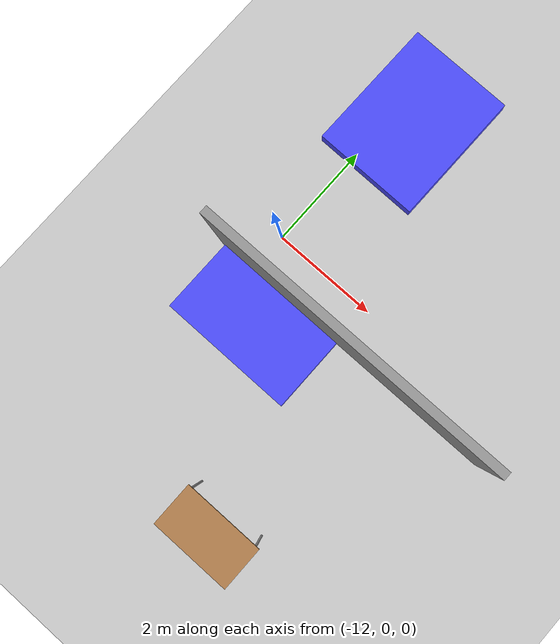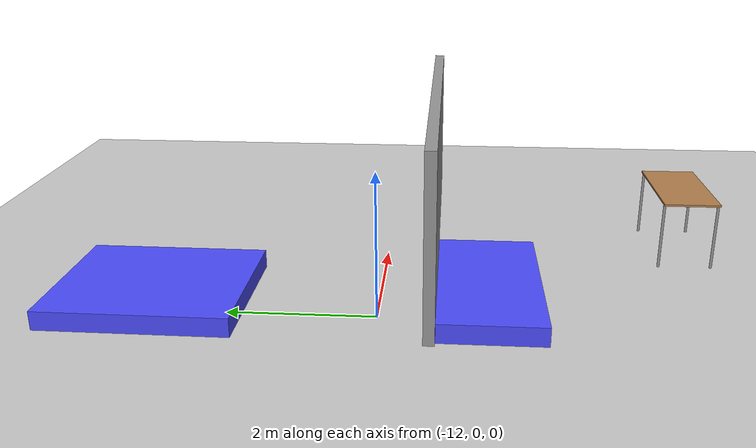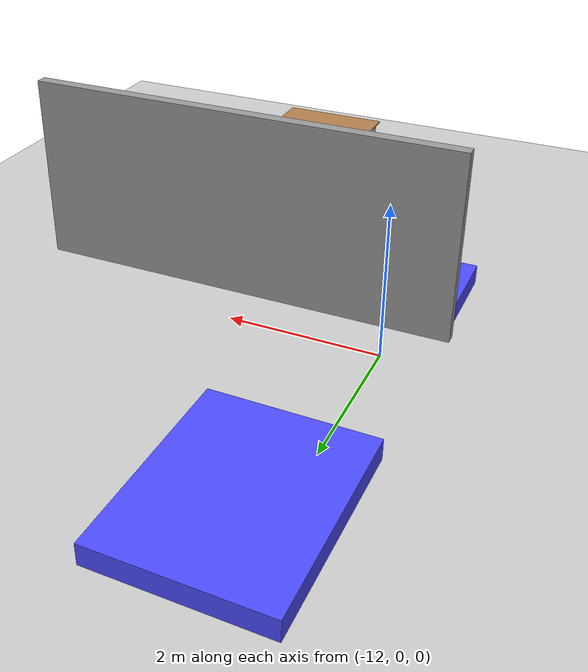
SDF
<sdf version="1.6">
 <world name="default">
  <model name="ground_plane">
   <static>1</static>
   <link name="link">
    <collision name="collision">
     <geometry><plane><normal>0 0 1</normal><size>100 100</size></plane></geometry>
     <surface><friction><ode><mu>100</mu><mu2>50</mu2></ode></friction></surface>
    </collision>
    <visual name="visual">
     <cast_shadows>0</cast_shadows>
     <geometry><plane><normal>0 0 1</normal><size>100 100</size></plane></geometry>
     <material>
      <script><uri>file://media/materials/scripts/gazebo.material</uri><name>Gazebo/Grey</name></script>
     </material>
    </visual>
   </link>
  </model>
  <model name="table_0">
   <static>1</static>
   <link name="link">
    <collision name="surface">
     <pose>0 0 1 0 -0 0</pose>
     <geometry><box><size>1.5 0.8 0.03</size></box></geometry>
     <surface><friction><ode><mu>0.6</mu><mu2>0.6</mu2></ode></friction></surface>
    </collision>
    <visual name="visual1">
     <pose>0 0 1 0 -0 0</pose>
     <geometry><box><size>1.5 0.8 0.03</size></box></geometry>
     <material>
      <script><uri>file://media/materials/scripts/gazebo.material</uri><name>Gazebo/Wood</name></script>
     </material>
    </visual>
    <collision name="front_left_leg">
     <pose>0.68 0.38 0.5 0 -0 0</pose>
     <geometry><cylinder><radius>0.02</radius><length>1</length></cylinder></geometry>
    </collision>
    <visual name="front_left_leg">
     <pose>0.68 0.38 0.5 0 -0 0</pose>
     <geometry><cylinder><radius>0.02</radius><length>1</length></cylinder></geometry>
     <material>
      <script><uri>file://media/materials/scripts/gazebo.material</uri><name>Gazebo/Grey</name></script>
     </material>
    </visual>
    <collision name="front_right_leg">
     <pose>0.68 -0.38 0.5 0 -0 0</pose>
     <geometry><cylinder><radius>0.02</radius><length>1</length></cylinder></geometry>
    </collision>
    <visual name="front_right_leg">
     <pose>0.68 -0.38 0.5 0 -0 0</pose>
     <geometry><cylinder><radius>0.02</radius><length>1</length></cylinder></geometry>
     <material>
      <script><uri>file://media/materials/scripts/gazebo.material</uri><name>Gazebo/Grey</name></script>
     </material>
    </visual>
    <collision name="back_right_leg">
     <pose>-0.68 -0.38 0.5 0 -0 0</pose>
     <geometry><cylinder><radius>0.02</radius><length>1</length></cylinder></geometry>
    </collision>
    <visual name="back_right_leg">
     <pose>-0.68 -0.38 0.5 0 -0 0</pose>
     <geometry><cylinder><radius>0.02</radius><length>1</length></cylinder></geometry>
     <material>
      <script><uri>file://media/materials/scripts/gazebo.material</uri><name>Gazebo/Grey</name></script>
     </material>
    </visual>
    <collision name="back_left_leg">
     <pose>-0.68 0.38 0.5 0 -0 0</pose>
     <geometry><cylinder><radius>0.02</radius><length>1</length></cylinder></geometry>
    </collision>
    <visual name="back_left_leg">
     <pose>-0.68 0.38 0.5 0 -0 0</pose>
     <geometry><cylinder><radius>0.02</radius><length>1</length></cylinder></geometry>
     <material>
      <script><uri>file://media/materials/scripts/gazebo.material</uri><name>Gazebo/Grey</name></script>
     </material>
    </visual>
   </link>
   <pose>-9.54504 -4.40497 0 0 -0 0</pose>
  </model>
  <model name="bed_1">
   <link name="link">
    <inertial>
     <mass>1</mass>
     <inertia>
      <ixx>0.166667</ixx>
      <ixy>0</ixy>
      <ixz>0</ixz>
      <iyy>0.166667</iyy>
      <iyz>0</iyz>
      <izz>0.166667</izz>
     </inertia>
    </inertial>
    <visual name="visual">
     <geometry><box><size>1.40955 2.56695 0.267057</size></box></geometry>
     <material>
      <script><name>Gazebo/Grey</name><uri>file://media/materials/scripts/gazebo.material</uri></script>
      <shader type="pixel"><normal_map>__default__</normal_map></shader>
      <ambient>0.3 0.3 1 0</ambient>
      <diffuse>0.7 0.7 0.7 1</diffuse>
      <specular>0.01 0.01 0.01 1</specular>
      <emissive>0 0 0 1</emissive>
     </material>
    </visual>
    <collision name="collision">
     <geometry><box><size>1.40955 2.56695 0.267057</size></box></geometry>
     <surface>
      <friction>
       <ode><mu>1</mu><mu2>1</mu2><fdir1>0 0 0</fdir1><slip1>0</slip1><slip2>0</slip2></ode>
       <torsional>
        <coefficient>1</coefficient>
        <patch_radius>0</patch_radius>
        <surface_radius>0</surface_radius>
        <use_patch_radius>1</use_patch_radius>
        <ode><slip>0</slip></ode>
       </torsional>
      </friction>
      <bounce><restitution_coefficient>0</restitution_coefficient><threshold>1e+06</threshold></bounce>
      <contact>
       <collide_without_contact>0</collide_without_contact>
       <collide_without_contact_bitmask>1</collide_without_contact_bitmask>
       <collide_bitmask>1</collide_bitmask>
       <ode>
        <soft_cfm>0</soft_cfm>
        <soft_erp>0.2</soft_erp>
        <kp>1e+13</kp>
        <kd>1</kd>
        <max_vel>0.01</max_vel>
        <min_depth>0</min_depth>
       </ode>
       <bullet>
        <split_impulse>1</split_impulse>
        <split_impulse_penetration_threshold>-0.01</split_impulse_penetration_threshold>
        <soft_cfm>0</soft_cfm>
        <soft_erp>0.2</soft_erp>
        <kp>1e+13</kp>
        <kd>1</kd>
       </bullet>
      </contact>
     </surface>
    </collision>
   </link>
   <static>0</static>
   <pose>-11.3281 -1.47696 0.133524 3.14159 7e-06 1.56809</pose>
  </model>
  <model name="bed_master_bedroom">
   <link name="link">
    <pose>0.100094 0.123025 0 0 -0 0</pose>
    <inertial>
     <mass>1.44755</mass>
     <inertia>
      <ixx>0.803455</ixx>
      <ixy>0</ixy>
      <ixz>0</ixz>
      <iyy>0.510804</iyy>
      <iyz>0</iyz>
      <izz>1.29705</izz>
     </inertia>
    </inertial>
    <visual name="visual">
     <geometry><box><size>2.04039 2.56695 0.267057</size></box></geometry>
     <material>
      <script><name>Gazebo/Grey</name><uri>file://media/materials/scripts/gazebo.material</uri></script>
      <shader type="pixel"><normal_map>__default__</normal_map></shader>
      <ambient>0.3 0.3 1 0</ambient>
      <diffuse>0.7 0.7 0.7 1</diffuse>
      <specular>0.01 0.01 0.01 1</specular>
      <emissive>0 0 0 1</emissive>
     </material>
    </visual>
    <collision name="collision">
     <geometry><box><size>2.04039 2.56695 0.267057</size></box></geometry>
     <surface>
      <friction>
       <ode><mu>1</mu><mu2>1</mu2><fdir1>0 0 0</fdir1><slip1>0</slip1><slip2>0</slip2></ode>
       <torsional>
        <coefficient>1</coefficient>
        <patch_radius>0</patch_radius>
        <surface_radius>0</surface_radius>
        <use_patch_radius>1</use_patch_radius>
        <ode><slip>0</slip></ode>
       </torsional>
      </friction>
      <bounce><restitution_coefficient>0</restitution_coefficient><threshold>1e+06</threshold></bounce>
      <contact>
       <collide_without_contact>0</collide_without_contact>
       <collide_without_contact_bitmask>1</collide_without_contact_bitmask>
       <collide_bitmask>1</collide_bitmask>
       <ode>
        <soft_cfm>0</soft_cfm>
        <soft_erp>0.2</soft_erp>
        <kp>1e+13</kp>
        <kd>1</kd>
        <max_vel>0.01</max_vel>
        <min_depth>0</min_depth>
       </ode>
       <bullet>
        <split_impulse>1</split_impulse>
        <split_impulse_penetration_threshold>-0.01</split_impulse_penetration_threshold>
        <soft_cfm>0</soft_cfm>
        <soft_erp>0.2</soft_erp>
        <kp>1e+13</kp>
        <kd>1</kd>
       </bullet>
      </contact>
     </surface>
    </collision>
   </link>
   <static>0</static>
   <pose>-11.7082 2.93981 0.133528 0 0 -0.007288</pose>
  </model>
  <model name="Building">
   <link name="Wall_17">
    <pose>-8.53061 -1.25053 0 0 -0 3.14159</pose>
    <visual name="Wall_17_Visual">
     <pose>0 0 1.25 0 -0 0</pose>
     <geometry><box><size>5.75 0.15 2.5</size></box></geometry>
     <material>
      <script><uri>file://media/materials/scripts/gazebo.material</uri><name>Gazebo/Grey</name></script>
      <ambient>1 1 1 1</ambient>
      <shader type="pixel"/>
      <diffuse>0.7 0.7 0.7 1</diffuse>
      <specular>0.01 0.01 0.01 1</specular>
      <emissive>0 0 0 1</emissive>
     </material>
     <meta><layer>0</layer></meta>
    </visual>
    <collision name="Wall_17_Collision">
     <pose>0 0 1.25 0 -0 0</pose>
     <geometry><box><size>5.75 0.15 2.5</size></box></geometry>
     <surface>
      <friction>
       <ode><mu>1</mu><mu2>1</mu2><fdir1>0 0 0</fdir1><slip1>0</slip1><slip2>0</slip2></ode>
       <torsional>
        <coefficient>1</coefficient>
        <patch_radius>0</patch_radius>
        <surface_radius>0</surface_radius>
        <use_patch_radius>1</use_patch_radius>
        <ode><slip>0</slip></ode>
       </torsional>
      </friction>
      <bounce><restitution_coefficient>0</restitution_coefficient><threshold>1e+06</threshold></bounce>
      <contact>
       <collide_without_contact>0</collide_without_contact>
       <collide_without_contact_bitmask>1</collide_without_contact_bitmask>
       <collide_bitmask>1</collide_bitmask>
       <ode>
        <soft_cfm>0</soft_cfm>
        <soft_erp>0.2</soft_erp>
        <kp>1e+13</kp>
        <kd>1</kd>
        <max_vel>0.01</max_vel>
        <min_depth>0</min_depth>
       </ode>
       <bullet>
        <split_impulse>1</split_impulse>
        <split_impulse_penetration_threshold>-0.01</split_impulse_penetration_threshold>
        <soft_cfm>0</soft_cfm>
        <soft_erp>0.2</soft_erp>
        <kp>1e+13</kp>
        <kd>1</kd>
       </bullet>
      </contact>
     </surface>
    </collision>
   </link>
   <static>1</static>
   <pose>-1.27547 0.55747 0 0 -0 0</pose>
  </model>
 </world>
</sdf>
